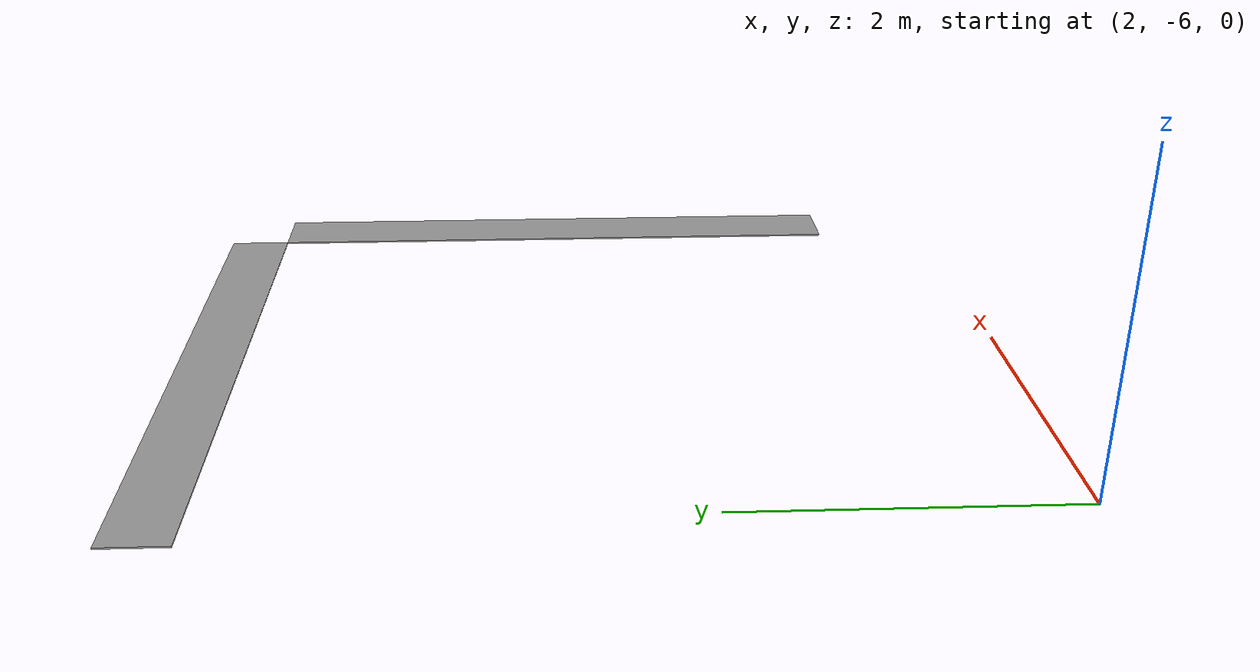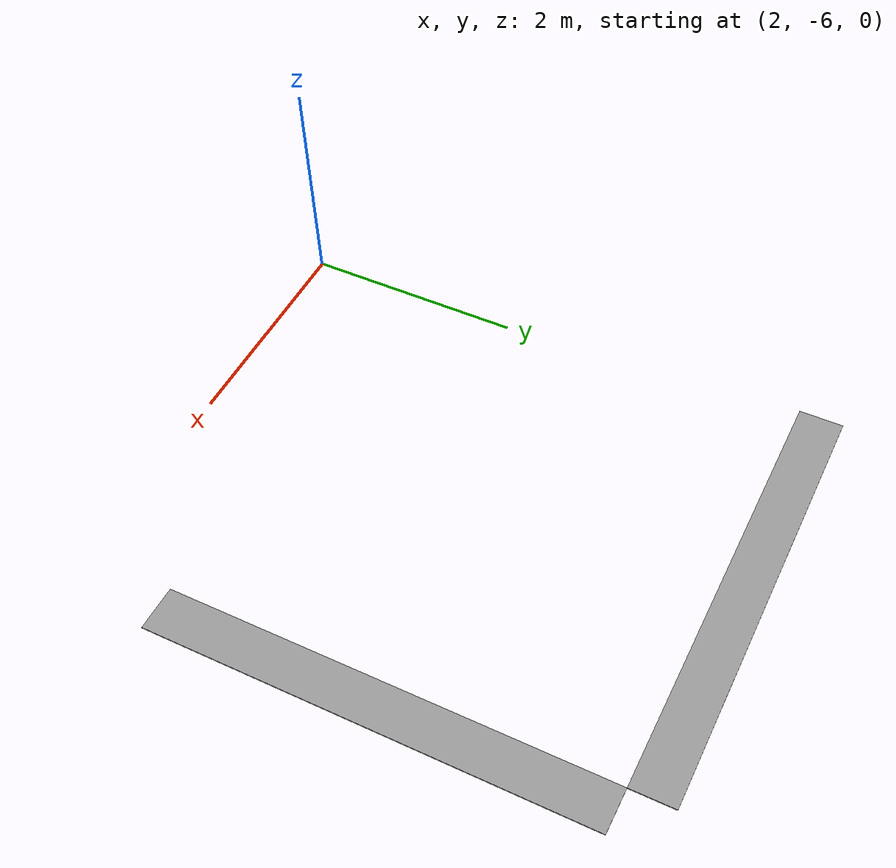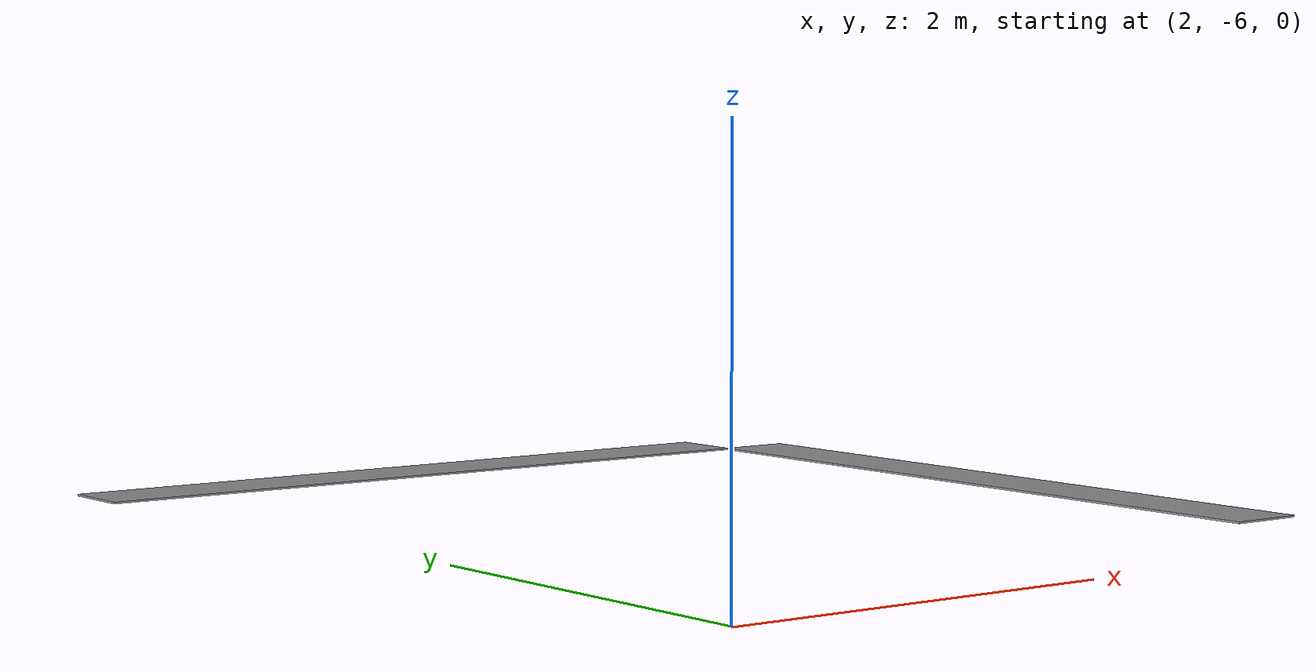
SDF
<?xml version='1.0'?>
<sdf version='1.6'>
  <model name='L-wall'>
    <pose frame=''>4 -3 0 0 -0 0</pose>
    <link name='Wall_2'>
      <collision name='Wall_2_Collision'>
        <geometry>
          <box>
            <size>4 0.4 0.01</size>
          </box>
        </geometry>
        <pose frame=''>0 0 0.005 0 -0 0</pose>
      </collision>
      <visual name='Wall_2_Visual'>
        <pose frame=''>0 0 0.005 0 -0 0</pose>
        <geometry>
          <box>
            <size>4 0.4 0.01</size>
          </box>
        </geometry>
        <material>
          <script>
            <uri>file://media/materials/scripts/gazebo.material</uri>
            <name>Gazebo/Grey</name>
          </script>
          <ambient>1 1 1 1</ambient>
        </material>
        <meta>
          <layer>0</layer>
        </meta>
      </visual>
      <pose frame=''>-0.2 2 0 0 -0 0</pose>
    </link>
    <link name='Wall_7'>
      <collision name='Wall_7_Collision'>
        <geometry>
          <box>
            <size>4 0.4 0.01</size>
          </box>
        </geometry>
        <pose frame=''>0 0 0.005 0 -0 0</pose>
      </collision>
      <visual name='Wall_7_Visual'>
        <pose frame=''>0 0 0.005 0 -0 0</pose>
        <geometry>
          <box>
            <size>4 0.4 0.01</size>
          </box>
        </geometry>
        <material>
          <script>
            <uri>file://media/materials/scripts/gazebo.material</uri>
            <name>Gazebo/Grey</name>
          </script>
          <ambient>1 1 1 1</ambient>
        </material>
        <meta>
          <layer>0</layer>
        </meta>
      </visual>
      <pose frame=''>2 -0.2 0 0 -0 -1.5708</pose>
    </link>
    <static>1</static>
  </model>
</sdf>
